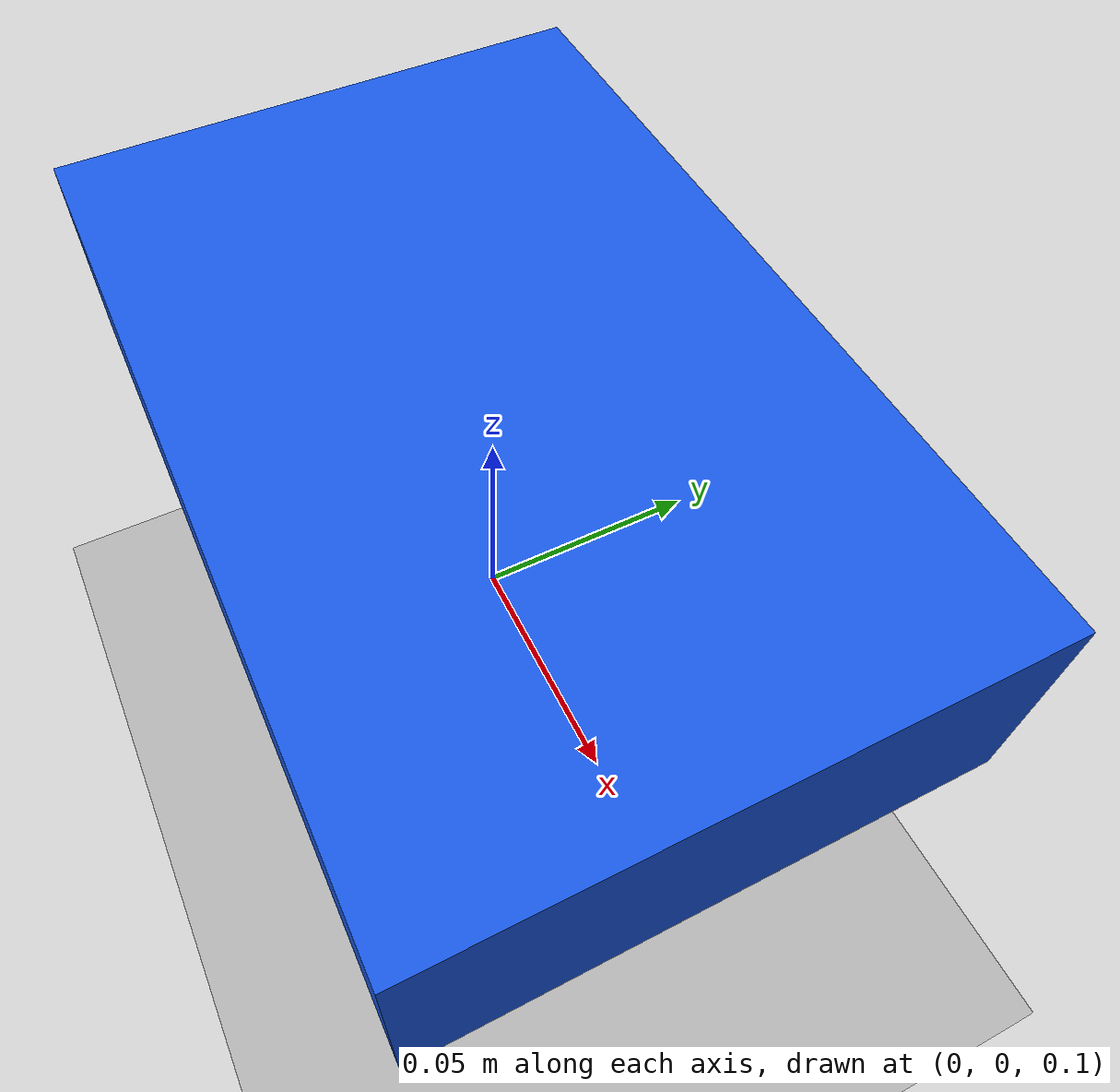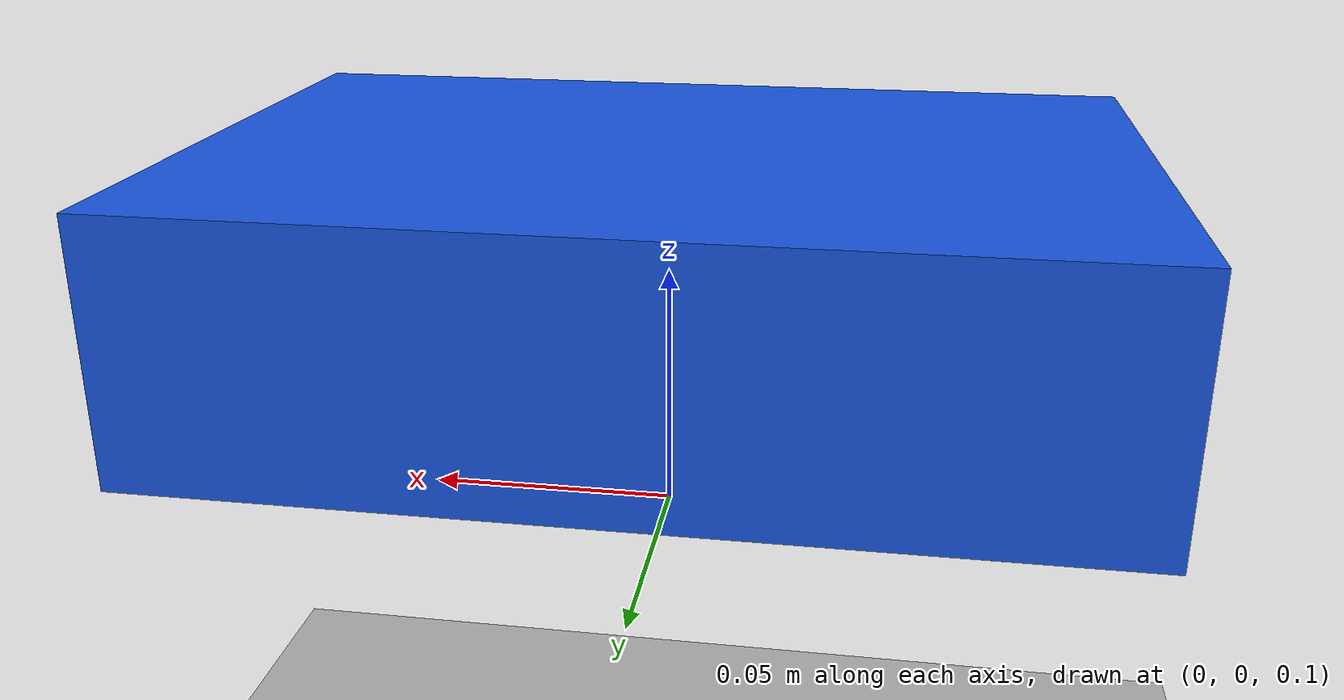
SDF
<?xml version="1.0" encoding="UTF-8"?>
<sdf version="1.9">
  <world name="imu_benchmark">
    <physics type="ode">
      <max_step_size>0.005</max_step_size>
      <real_time_factor>1.0</real_time_factor>
      <real_time_update_rate>200</real_time_update_rate>
    </physics>
    <plugin name="gz::sim::systems::Physics" filename="gz-sim-physics-system"/>
    <plugin name="gz::sim::systems::UserCommands" filename="gz-sim-user-commands-system"/>
    <plugin name="gz::sim::systems::SceneBroadcaster" filename="gz-sim-scene-broadcaster-system"/>
    <plugin name="gz::sim::systems::Imu" filename="gz-sim-imu-system"/>
    <plugin name="gz::sim::systems::Sensors" filename="gz-sim-sensors-system">
      <render_engine>ogre2</render_engine>
    </plugin>
    <gravity>0 0 -9.80665</gravity>
    <scene>
      <ambient>0.45 0.45 0.45 1</ambient>
      <background>0.78 0.80 0.82 1</background>
      <shadows>true</shadows>
    </scene>
    <light name="sun" type="directional">
      <pose>0 0 10 0 0 0</pose>
      <direction>-0.4 0.3 -0.9</direction>
      <diffuse>0.9 0.9 0.9 1</diffuse>
      <specular>0.2 0.2 0.2 1</specular>
    </light>
    <model name="ground_plane">
      <static>true</static>
      <link name="link">
        <collision name="collision">
          <geometry>
            <plane>
              <normal>0 0 1</normal>
              <size>40 40</size>
            </plane>
          </geometry>
        </collision>
        <visual name="visual">
          <geometry>
            <plane>
              <normal>0 0 1</normal>
              <size>40 40</size>
            </plane>
          </geometry>
          <material>
            <ambient>0.7 0.7 0.7 1</ambient>
            <diffuse>0.7 0.7 0.7 1</diffuse>
          </material>
        </visual>
      </link>
    </model>
    <model name="imu_platform">
      <static>true</static>
      <pose>0 0 0.15 0 0 0</pose>
      <link name="imu_link">
        <inertial>
          <mass>0.2</mass>
          <inertia>
            <ixx>0.001</ixx>
            <ixy>0</ixy>
            <ixz>0</ixz>
            <iyy>0.001</iyy>
            <iyz>0</iyz>
            <izz>0.001</izz>
          </inertia>
        </inertial>
        <visual name="visual">
          <geometry>
            <box>
              <size>0.18 0.12 0.05</size>
            </box>
          </geometry>
          <material>
            <ambient>0.1 0.35 0.9 1</ambient>
            <diffuse>0.1 0.35 0.9 1</diffuse>
          </material>
        </visual>
        <sensor name="six_axis_imu" type="imu">
          <always_on>true</always_on>
          <update_rate>200</update_rate>
          <topic>/imu/raw</topic>
          <imu>
            <angular_velocity>
              <x>
                <noise type="gaussian">
                  <mean>0</mean>
                  <stddev>0.004</stddev>
                  <bias_mean>0.006</bias_mean>
                  <bias_stddev>0.0006</bias_stddev>
                </noise>
              </x>
              <y>
                <noise type="gaussian">
                  <mean>0</mean>
                  <stddev>0.004</stddev>
                  <bias_mean>-0.004</bias_mean>
                  <bias_stddev>0.0006</bias_stddev>
                </noise>
              </y>
              <z>
                <noise type="gaussian">
                  <mean>0</mean>
                  <stddev>0.004</stddev>
                  <bias_mean>0.010</bias_mean>
                  <bias_stddev>0.0006</bias_stddev>
                </noise>
              </z>
            </angular_velocity>
            <linear_acceleration>
              <x>
                <noise type="gaussian">
                  <mean>0</mean>
                  <stddev>0.08</stddev>
                  <bias_mean>0.04</bias_mean>
                  <bias_stddev>0.01</bias_stddev>
                </noise>
              </x>
              <y>
                <noise type="gaussian">
                  <mean>0</mean>
                  <stddev>0.08</stddev>
                  <bias_mean>-0.02</bias_mean>
                  <bias_stddev>0.01</bias_stddev>
                </noise>
              </y>
              <z>
                <noise type="gaussian">
                  <mean>0</mean>
                  <stddev>0.08</stddev>
                  <bias_mean>0.06</bias_mean>
                  <bias_stddev>0.01</bias_stddev>
                </noise>
              </z>
            </linear_acceleration>
          </imu>
        </sensor>
      </link>
    </model>
  </world>
</sdf>
